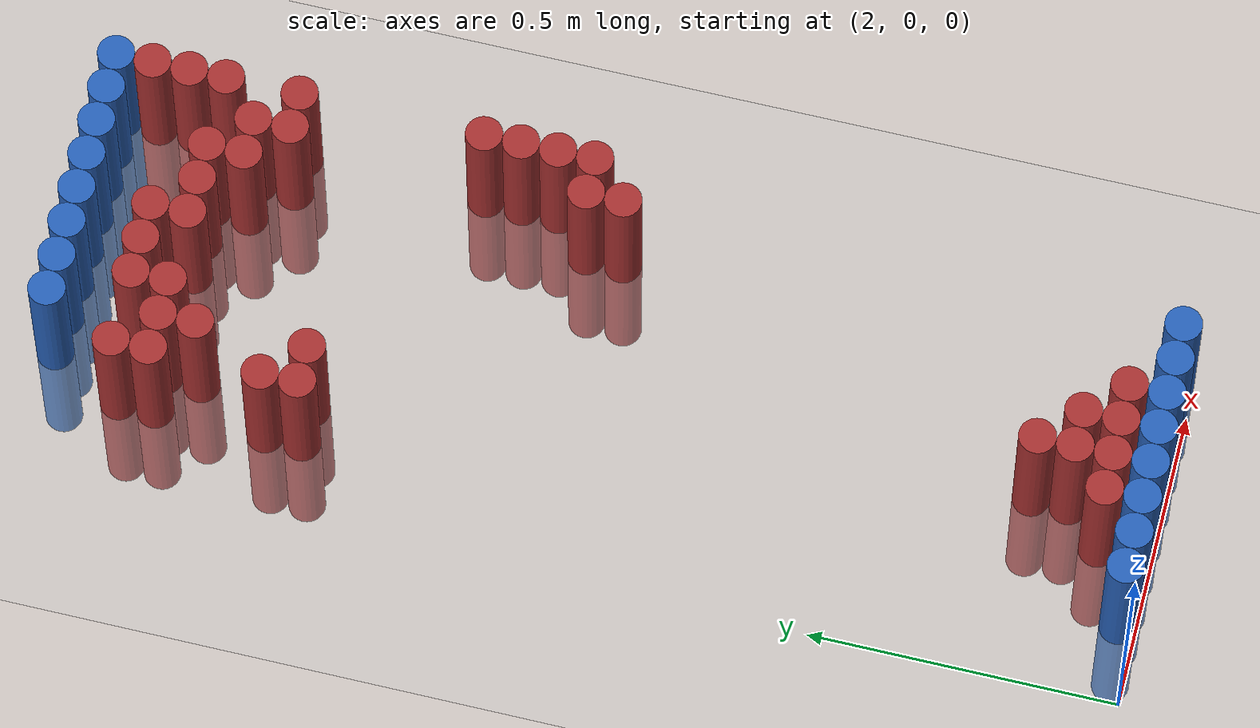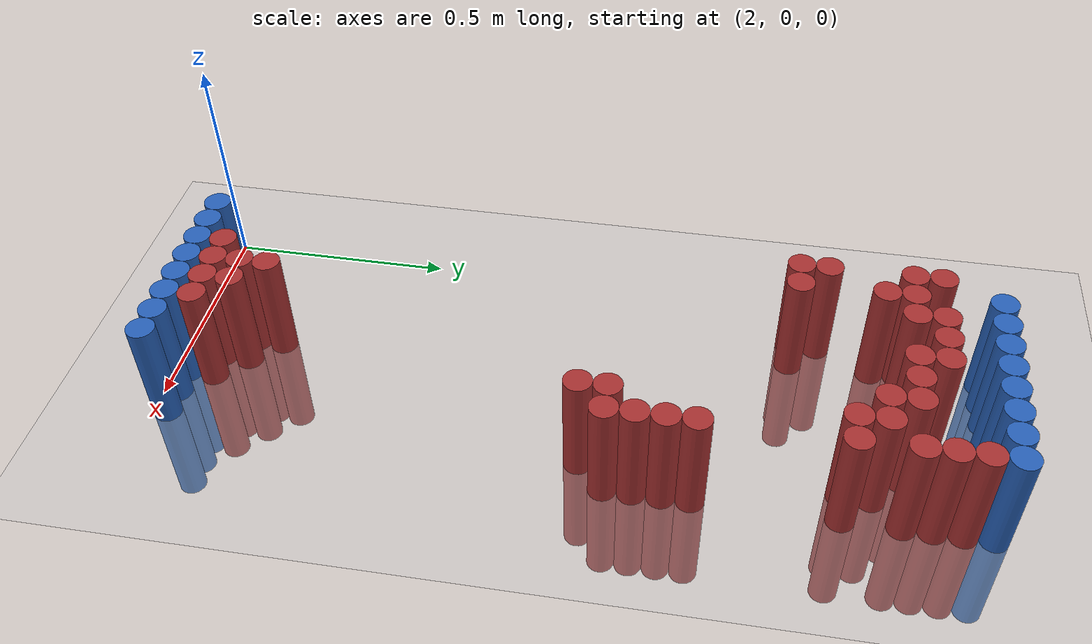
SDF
<sdf version="1.6">
 <world name="default">
  <model name="ground_plane">
   <static>1</static>
   <link name="link">
    <collision name="collision">
     <geometry><plane><normal>0 0 1</normal><size>100 100</size></plane></geometry>
     <surface><friction><ode><mu>100</mu><mu2>50</mu2></ode></friction></surface>
    </collision>
    <visual name="visual">
     <cast_shadows>0</cast_shadows>
     <geometry><plane><normal>0 0 1</normal><size>100 100</size></plane></geometry>
     <material>
      <script><uri>file://media/materials/scripts/gazebo.material</uri><name>Gazebo/Grey</name></script>
     </material>
    </visual>
   </link>
  </model>
  <model name="unit_cylinder_97">
   <static>1</static>
   <pose>2.190000 1.770000 0.000000 0.000000 0.000000 0.000000</pose>
   <link name="link">
    <inertial>
     <mass>1</mass>
     <inertia><ixx>0.145833</ixx><ixy>0</ixy><ixz>0</ixz><iyy>0.145833</iyy><iyz>0</iyz><izz>0.125</izz></inertia>
    </inertial>
    <collision name="collision">
     <geometry><cylinder><radius>0.030000</radius><length>0.5</length></cylinder></geometry>
    </collision>
    <visual name="visual">
     <geometry><cylinder><radius>0.030000</radius><length>0.5</length></cylinder></geometry>
     <material>
      <ambient>0.152000 0.379000 0.720000 1</ambient>
      <diffuse>0.152000 0.379000 0.720000 1</diffuse>
     </material>
     <material>
      <script><name>Gazebo/Grey</name><uri>file://media/materials/scripts/gazebo.material</uri></script>
     </material>
    </visual>
   </link>
  </model>
  <model name="unit_cylinder_98">
   <static>1</static>
   <pose>2.250000 1.770000 0.000000 0.000000 0.000000 0.000000</pose>
   <link name="link">
    <inertial>
     <mass>1</mass>
     <inertia><ixx>0.145833</ixx><ixy>0</ixy><ixz>0</ixz><iyy>0.145833</iyy><iyz>0</iyz><izz>0.125</izz></inertia>
    </inertial>
    <collision name="collision">
     <geometry><cylinder><radius>0.030000</radius><length>0.5</length></cylinder></geometry>
    </collision>
    <visual name="visual">
     <geometry><cylinder><radius>0.030000</radius><length>0.5</length></cylinder></geometry>
     <material>
      <ambient>0.152000 0.379000 0.720000 1</ambient>
      <diffuse>0.152000 0.379000 0.720000 1</diffuse>
     </material>
     <material>
      <script><name>Gazebo/Grey</name><uri>file://media/materials/scripts/gazebo.material</uri></script>
     </material>
    </visual>
   </link>
  </model>
  <model name="unit_cylinder_99">
   <static>1</static>
   <pose>2.310000 1.770000 0.000000 0.000000 0.000000 0.000000</pose>
   <link name="link">
    <inertial>
     <mass>1</mass>
     <inertia><ixx>0.145833</ixx><ixy>0</ixy><ixz>0</ixz><iyy>0.145833</iyy><iyz>0</iyz><izz>0.125</izz></inertia>
    </inertial>
    <collision name="collision">
     <geometry><cylinder><radius>0.030000</radius><length>0.5</length></cylinder></geometry>
    </collision>
    <visual name="visual">
     <geometry><cylinder><radius>0.030000</radius><length>0.5</length></cylinder></geometry>
     <material>
      <ambient>0.152000 0.379000 0.720000 1</ambient>
      <diffuse>0.152000 0.379000 0.720000 1</diffuse>
     </material>
     <material>
      <script><name>Gazebo/Grey</name><uri>file://media/materials/scripts/gazebo.material</uri></script>
     </material>
    </visual>
   </link>
  </model>
  <model name="unit_cylinder_100">
   <static>1</static>
   <pose>2.370000 1.770000 0.000000 0.000000 0.000000 0.000000</pose>
   <link name="link">
    <inertial>
     <mass>1</mass>
     <inertia><ixx>0.145833</ixx><ixy>0</ixy><ixz>0</ixz><iyy>0.145833</iyy><iyz>0</iyz><izz>0.125</izz></inertia>
    </inertial>
    <collision name="collision">
     <geometry><cylinder><radius>0.030000</radius><length>0.5</length></cylinder></geometry>
    </collision>
    <visual name="visual">
     <geometry><cylinder><radius>0.030000</radius><length>0.5</length></cylinder></geometry>
     <material>
      <ambient>0.152000 0.379000 0.720000 1</ambient>
      <diffuse>0.152000 0.379000 0.720000 1</diffuse>
     </material>
     <material>
      <script><name>Gazebo/Grey</name><uri>file://media/materials/scripts/gazebo.material</uri></script>
     </material>
    </visual>
   </link>
  </model>
  <model name="unit_cylinder_101">
   <static>1</static>
   <pose>2.430000 1.770000 0.000000 0.000000 0.000000 0.000000</pose>
   <link name="link">
    <inertial>
     <mass>1</mass>
     <inertia><ixx>0.145833</ixx><ixy>0</ixy><ixz>0</ixz><iyy>0.145833</iyy><iyz>0</iyz><izz>0.125</izz></inertia>
    </inertial>
    <collision name="collision">
     <geometry><cylinder><radius>0.030000</radius><length>0.5</length></cylinder></geometry>
    </collision>
    <visual name="visual">
     <geometry><cylinder><radius>0.030000</radius><length>0.5</length></cylinder></geometry>
     <material>
      <ambient>0.152000 0.379000 0.720000 1</ambient>
      <diffuse>0.152000 0.379000 0.720000 1</diffuse>
     </material>
     <material>
      <script><name>Gazebo/Grey</name><uri>file://media/materials/scripts/gazebo.material</uri></script>
     </material>
    </visual>
   </link>
  </model>
  <model name="unit_cylinder_102">
   <static>1</static>
   <pose>2.490000 1.770000 0.000000 0.000000 0.000000 0.000000</pose>
   <link name="link">
    <inertial>
     <mass>1</mass>
     <inertia><ixx>0.145833</ixx><ixy>0</ixy><ixz>0</ixz><iyy>0.145833</iyy><iyz>0</iyz><izz>0.125</izz></inertia>
    </inertial>
    <collision name="collision">
     <geometry><cylinder><radius>0.030000</radius><length>0.5</length></cylinder></geometry>
    </collision>
    <visual name="visual">
     <geometry><cylinder><radius>0.030000</radius><length>0.5</length></cylinder></geometry>
     <material>
      <ambient>0.152000 0.379000 0.720000 1</ambient>
      <diffuse>0.152000 0.379000 0.720000 1</diffuse>
     </material>
     <material>
      <script><name>Gazebo/Grey</name><uri>file://media/materials/scripts/gazebo.material</uri></script>
     </material>
    </visual>
   </link>
  </model>
  <model name="unit_cylinder_103">
   <static>1</static>
   <pose>2.550000 1.770000 0.000000 0.000000 0.000000 0.000000</pose>
   <link name="link">
    <inertial>
     <mass>1</mass>
     <inertia><ixx>0.145833</ixx><ixy>0</ixy><ixz>0</ixz><iyy>0.145833</iyy><iyz>0</iyz><izz>0.125</izz></inertia>
    </inertial>
    <collision name="collision">
     <geometry><cylinder><radius>0.030000</radius><length>0.5</length></cylinder></geometry>
    </collision>
    <visual name="visual">
     <geometry><cylinder><radius>0.030000</radius><length>0.5</length></cylinder></geometry>
     <material>
      <ambient>0.152000 0.379000 0.720000 1</ambient>
      <diffuse>0.152000 0.379000 0.720000 1</diffuse>
     </material>
     <material>
      <script><name>Gazebo/Grey</name><uri>file://media/materials/scripts/gazebo.material</uri></script>
     </material>
    </visual>
   </link>
  </model>
  <model name="unit_cylinder_104">
   <static>1</static>
   <pose>2.610000 1.770000 0.000000 0.000000 0.000000 0.000000</pose>
   <link name="link">
    <inertial>
     <mass>1</mass>
     <inertia><ixx>0.145833</ixx><ixy>0</ixy><ixz>0</ixz><iyy>0.145833</iyy><iyz>0</iyz><izz>0.125</izz></inertia>
    </inertial>
    <collision name="collision">
     <geometry><cylinder><radius>0.030000</radius><length>0.5</length></cylinder></geometry>
    </collision>
    <visual name="visual">
     <geometry><cylinder><radius>0.030000</radius><length>0.5</length></cylinder></geometry>
     <material>
      <ambient>0.152000 0.379000 0.720000 1</ambient>
      <diffuse>0.152000 0.379000 0.720000 1</diffuse>
     </material>
     <material>
      <script><name>Gazebo/Grey</name><uri>file://media/materials/scripts/gazebo.material</uri></script>
     </material>
    </visual>
   </link>
  </model>
  <model name="unit_cylinder_126">
   <static>1</static>
   <pose>2.610000 1.710000 0.000000 0.000000 0.000000 0.000000</pose>
   <link name="link">
    <inertial>
     <mass>1</mass>
     <inertia><ixx>0.145833</ixx><ixy>0</ixy><ixz>0</ixz><iyy>0.145833</iyy><iyz>0</iyz><izz>0.125</izz></inertia>
    </inertial>
    <collision name="collision">
     <geometry><cylinder><radius>0.030000</radius><length>0.5</length></cylinder></geometry>
    </collision>
    <visual name="visual">
     <geometry><cylinder><radius>0.030000</radius><length>0.5</length></cylinder></geometry>
     <material>
      <ambient>0.648000 0.192000 0.192000 1</ambient>
      <diffuse>0.648000 0.192000 0.192000 1</diffuse>
     </material>
     <material>
      <script><name>Gazebo/Grey</name><uri>file://media/materials/scripts/gazebo.material</uri></script>
     </material>
    </visual>
   </link>
  </model>
  <model name="unit_cylinder_135">
   <static>1</static>
   <pose>2.130000 1.650000 0.000000 0.000000 0.000000 0.000000</pose>
   <link name="link">
    <inertial>
     <mass>1</mass>
     <inertia><ixx>0.145833</ixx><ixy>0</ixy><ixz>0</ixz><iyy>0.145833</iyy><iyz>0</iyz><izz>0.125</izz></inertia>
    </inertial>
    <collision name="collision">
     <geometry><cylinder><radius>0.030000</radius><length>0.5</length></cylinder></geometry>
    </collision>
    <visual name="visual">
     <geometry><cylinder><radius>0.030000</radius><length>0.5</length></cylinder></geometry>
     <material>
      <ambient>0.648000 0.192000 0.192000 1</ambient>
      <diffuse>0.648000 0.192000 0.192000 1</diffuse>
     </material>
     <material>
      <script><name>Gazebo/Grey</name><uri>file://media/materials/scripts/gazebo.material</uri></script>
     </material>
    </visual>
   </link>
  </model>
  <model name="unit_cylinder_136">
   <static>1</static>
   <pose>2.250000 1.650000 0.000000 0.000000 0.000000 0.000000</pose>
   <link name="link">
    <inertial>
     <mass>1</mass>
     <inertia><ixx>0.145833</ixx><ixy>0</ixy><ixz>0</ixz><iyy>0.145833</iyy><iyz>0</iyz><izz>0.125</izz></inertia>
    </inertial>
    <collision name="collision">
     <geometry><cylinder><radius>0.030000</radius><length>0.5</length></cylinder></geometry>
    </collision>
    <visual name="visual">
     <geometry><cylinder><radius>0.030000</radius><length>0.5</length></cylinder></geometry>
     <material>
      <ambient>0.648000 0.192000 0.192000 1</ambient>
      <diffuse>0.648000 0.192000 0.192000 1</diffuse>
     </material>
     <material>
      <script><name>Gazebo/Grey</name><uri>file://media/materials/scripts/gazebo.material</uri></script>
     </material>
    </visual>
   </link>
  </model>
  <model name="unit_cylinder_137">
   <static>1</static>
   <pose>2.310000 1.650000 0.000000 0.000000 0.000000 0.000000</pose>
   <link name="link">
    <inertial>
     <mass>1</mass>
     <inertia><ixx>0.145833</ixx><ixy>0</ixy><ixz>0</ixz><iyy>0.145833</iyy><iyz>0</iyz><izz>0.125</izz></inertia>
    </inertial>
    <collision name="collision">
     <geometry><cylinder><radius>0.030000</radius><length>0.5</length></cylinder></geometry>
    </collision>
    <visual name="visual">
     <geometry><cylinder><radius>0.030000</radius><length>0.5</length></cylinder></geometry>
     <material>
      <ambient>0.648000 0.192000 0.192000 1</ambient>
      <diffuse>0.648000 0.192000 0.192000 1</diffuse>
     </material>
     <material>
      <script><name>Gazebo/Grey</name><uri>file://media/materials/scripts/gazebo.material</uri></script>
     </material>
    </visual>
   </link>
  </model>
  <model name="unit_cylinder_138">
   <static>1</static>
   <pose>2.370000 1.650000 0.000000 0.000000 0.000000 0.000000</pose>
   <link name="link">
    <inertial>
     <mass>1</mass>
     <inertia><ixx>0.145833</ixx><ixy>0</ixy><ixz>0</ixz><iyy>0.145833</iyy><iyz>0</iyz><izz>0.125</izz></inertia>
    </inertial>
    <collision name="collision">
     <geometry><cylinder><radius>0.030000</radius><length>0.5</length></cylinder></geometry>
    </collision>
    <visual name="visual">
     <geometry><cylinder><radius>0.030000</radius><length>0.5</length></cylinder></geometry>
     <material>
      <ambient>0.648000 0.192000 0.192000 1</ambient>
      <diffuse>0.648000 0.192000 0.192000 1</diffuse>
     </material>
     <material>
      <script><name>Gazebo/Grey</name><uri>file://media/materials/scripts/gazebo.material</uri></script>
     </material>
    </visual>
   </link>
  </model>
  <model name="unit_cylinder_139">
   <static>1</static>
   <pose>2.610000 1.650000 0.000000 0.000000 0.000000 0.000000</pose>
   <link name="link">
    <inertial>
     <mass>1</mass>
     <inertia><ixx>0.145833</ixx><ixy>0</ixy><ixz>0</ixz><iyy>0.145833</iyy><iyz>0</iyz><izz>0.125</izz></inertia>
    </inertial>
    <collision name="collision">
     <geometry><cylinder><radius>0.030000</radius><length>0.5</length></cylinder></geometry>
    </collision>
    <visual name="visual">
     <geometry><cylinder><radius>0.030000</radius><length>0.5</length></cylinder></geometry>
     <material>
      <ambient>0.648000 0.192000 0.192000 1</ambient>
      <diffuse>0.648000 0.192000 0.192000 1</diffuse>
     </material>
     <material>
      <script><name>Gazebo/Grey</name><uri>file://media/materials/scripts/gazebo.material</uri></script>
     </material>
    </visual>
   </link>
  </model>
  <model name="unit_cylinder_150">
   <static>1</static>
   <pose>2.130000 1.590000 0.000000 0.000000 0.000000 0.000000</pose>
   <link name="link">
    <inertial>
     <mass>1</mass>
     <inertia><ixx>0.145833</ixx><ixy>0</ixy><ixz>0</ixz><iyy>0.145833</iyy><iyz>0</iyz><izz>0.125</izz></inertia>
    </inertial>
    <collision name="collision">
     <geometry><cylinder><radius>0.030000</radius><length>0.5</length></cylinder></geometry>
    </collision>
    <visual name="visual">
     <geometry><cylinder><radius>0.030000</radius><length>0.5</length></cylinder></geometry>
     <material>
      <ambient>0.648000 0.192000 0.192000 1</ambient>
      <diffuse>0.648000 0.192000 0.192000 1</diffuse>
     </material>
     <material>
      <script><name>Gazebo/Grey</name><uri>file://media/materials/scripts/gazebo.material</uri></script>
     </material>
    </visual>
   </link>
  </model>
  <model name="unit_cylinder_151">
   <static>1</static>
   <pose>2.190000 1.590000 0.000000 0.000000 0.000000 0.000000</pose>
   <link name="link">
    <inertial>
     <mass>1</mass>
     <inertia><ixx>0.145833</ixx><ixy>0</ixy><ixz>0</ixz><iyy>0.145833</iyy><iyz>0</iyz><izz>0.125</izz></inertia>
    </inertial>
    <collision name="collision">
     <geometry><cylinder><radius>0.030000</radius><length>0.5</length></cylinder></geometry>
    </collision>
    <visual name="visual">
     <geometry><cylinder><radius>0.030000</radius><length>0.5</length></cylinder></geometry>
     <material>
      <ambient>0.648000 0.192000 0.192000 1</ambient>
      <diffuse>0.648000 0.192000 0.192000 1</diffuse>
     </material>
     <material>
      <script><name>Gazebo/Grey</name><uri>file://media/materials/scripts/gazebo.material</uri></script>
     </material>
    </visual>
   </link>
  </model>
  <model name="unit_cylinder_152">
   <static>1</static>
   <pose>2.250000 1.590000 0.000000 0.000000 0.000000 0.000000</pose>
   <link name="link">
    <inertial>
     <mass>1</mass>
     <inertia><ixx>0.145833</ixx><ixy>0</ixy><ixz>0</ixz><iyy>0.145833</iyy><iyz>0</iyz><izz>0.125</izz></inertia>
    </inertial>
    <collision name="collision">
     <geometry><cylinder><radius>0.030000</radius><length>0.5</length></cylinder></geometry>
    </collision>
    <visual name="visual">
     <geometry><cylinder><radius>0.030000</radius><length>0.5</length></cylinder></geometry>
     <material>
      <ambient>0.648000 0.192000 0.192000 1</ambient>
      <diffuse>0.648000 0.192000 0.192000 1</diffuse>
     </material>
     <material>
      <script><name>Gazebo/Grey</name><uri>file://media/materials/scripts/gazebo.material</uri></script>
     </material>
    </visual>
   </link>
  </model>
  <model name="unit_cylinder_153">
   <static>1</static>
   <pose>2.370000 1.590000 0.000000 0.000000 0.000000 0.000000</pose>
   <link name="link">
    <inertial>
     <mass>1</mass>
     <inertia><ixx>0.145833</ixx><ixy>0</ixy><ixz>0</ixz><iyy>0.145833</iyy><iyz>0</iyz><izz>0.125</izz></inertia>
    </inertial>
    <collision name="collision">
     <geometry><cylinder><radius>0.030000</radius><length>0.5</length></cylinder></geometry>
    </collision>
    <visual name="visual">
     <geometry><cylinder><radius>0.030000</radius><length>0.5</length></cylinder></geometry>
     <material>
      <ambient>0.648000 0.192000 0.192000 1</ambient>
      <diffuse>0.648000 0.192000 0.192000 1</diffuse>
     </material>
     <material>
      <script><name>Gazebo/Grey</name><uri>file://media/materials/scripts/gazebo.material</uri></script>
     </material>
    </visual>
   </link>
  </model>
  <model name="unit_cylinder_154">
   <static>1</static>
   <pose>2.430000 1.590000 0.000000 0.000000 0.000000 0.000000</pose>
   <link name="link">
    <inertial>
     <mass>1</mass>
     <inertia><ixx>0.145833</ixx><ixy>0</ixy><ixz>0</ixz><iyy>0.145833</iyy><iyz>0</iyz><izz>0.125</izz></inertia>
    </inertial>
    <collision name="collision">
     <geometry><cylinder><radius>0.030000</radius><length>0.5</length></cylinder></geometry>
    </collision>
    <visual name="visual">
     <geometry><cylinder><radius>0.030000</radius><length>0.5</length></cylinder></geometry>
     <material>
      <ambient>0.648000 0.192000 0.192000 1</ambient>
      <diffuse>0.648000 0.192000 0.192000 1</diffuse>
     </material>
     <material>
      <script><name>Gazebo/Grey</name><uri>file://media/materials/scripts/gazebo.material</uri></script>
     </material>
    </visual>
   </link>
  </model>
  <model name="unit_cylinder_155">
   <static>1</static>
   <pose>2.490000 1.590000 0.000000 0.000000 0.000000 0.000000</pose>
   <link name="link">
    <inertial>
     <mass>1</mass>
     <inertia><ixx>0.145833</ixx><ixy>0</ixy><ixz>0</ixz><iyy>0.145833</iyy><iyz>0</iyz><izz>0.125</izz></inertia>
    </inertial>
    <collision name="collision">
     <geometry><cylinder><radius>0.030000</radius><length>0.5</length></cylinder></geometry>
    </collision>
    <visual name="visual">
     <geometry><cylinder><radius>0.030000</radius><length>0.5</length></cylinder></geometry>
     <material>
      <ambient>0.648000 0.192000 0.192000 1</ambient>
      <diffuse>0.648000 0.192000 0.192000 1</diffuse>
     </material>
     <material>
      <script><name>Gazebo/Grey</name><uri>file://media/materials/scripts/gazebo.material</uri></script>
     </material>
    </visual>
   </link>
  </model>
  <model name="unit_cylinder_156">
   <static>1</static>
   <pose>2.610000 1.590000 0.000000 0.000000 0.000000 0.000000</pose>
   <link name="link">
    <inertial>
     <mass>1</mass>
     <inertia><ixx>0.145833</ixx><ixy>0</ixy><ixz>0</ixz><iyy>0.145833</iyy><iyz>0</iyz><izz>0.125</izz></inertia>
    </inertial>
    <collision name="collision">
     <geometry><cylinder><radius>0.030000</radius><length>0.5</length></cylinder></geometry>
    </collision>
    <visual name="visual">
     <geometry><cylinder><radius>0.030000</radius><length>0.5</length></cylinder></geometry>
     <material>
      <ambient>0.648000 0.192000 0.192000 1</ambient>
      <diffuse>0.648000 0.192000 0.192000 1</diffuse>
     </material>
     <material>
      <script><name>Gazebo/Grey</name><uri>file://media/materials/scripts/gazebo.material</uri></script>
     </material>
    </visual>
   </link>
  </model>
  <model name="unit_cylinder_166">
   <static>1</static>
   <pose>2.190000 1.530000 0.000000 0.000000 0.000000 0.000000</pose>
   <link name="link">
    <inertial>
     <mass>1</mass>
     <inertia><ixx>0.145833</ixx><ixy>0</ixy><ixz>0</ixz><iyy>0.145833</iyy><iyz>0</iyz><izz>0.125</izz></inertia>
    </inertial>
    <collision name="collision">
     <geometry><cylinder><radius>0.030000</radius><length>0.5</length></cylinder></geometry>
    </collision>
    <visual name="visual">
     <geometry><cylinder><radius>0.030000</radius><length>0.5</length></cylinder></geometry>
     <material>
      <ambient>0.648000 0.192000 0.192000 1</ambient>
      <diffuse>0.648000 0.192000 0.192000 1</diffuse>
     </material>
     <material>
      <script><name>Gazebo/Grey</name><uri>file://media/materials/scripts/gazebo.material</uri></script>
     </material>
    </visual>
   </link>
  </model>
  <model name="unit_cylinder_167">
   <static>1</static>
   <pose>2.490000 1.530000 0.000000 0.000000 0.000000 0.000000</pose>
   <link name="link">
    <inertial>
     <mass>1</mass>
     <inertia><ixx>0.145833</ixx><ixy>0</ixy><ixz>0</ixz><iyy>0.145833</iyy><iyz>0</iyz><izz>0.125</izz></inertia>
    </inertial>
    <collision name="collision">
     <geometry><cylinder><radius>0.030000</radius><length>0.5</length></cylinder></geometry>
    </collision>
    <visual name="visual">
     <geometry><cylinder><radius>0.030000</radius><length>0.5</length></cylinder></geometry>
     <material>
      <ambient>0.648000 0.192000 0.192000 1</ambient>
      <diffuse>0.648000 0.192000 0.192000 1</diffuse>
     </material>
     <material>
      <script><name>Gazebo/Grey</name><uri>file://media/materials/scripts/gazebo.material</uri></script>
     </material>
    </visual>
   </link>
  </model>
  <model name="unit_cylinder_168">
   <static>1</static>
   <pose>2.550000 1.530000 0.000000 0.000000 0.000000 0.000000</pose>
   <link name="link">
    <inertial>
     <mass>1</mass>
     <inertia><ixx>0.145833</ixx><ixy>0</ixy><ixz>0</ixz><iyy>0.145833</iyy><iyz>0</iyz><izz>0.125</izz></inertia>
    </inertial>
    <collision name="collision">
     <geometry><cylinder><radius>0.030000</radius><length>0.5</length></cylinder></geometry>
    </collision>
    <visual name="visual">
     <geometry><cylinder><radius>0.030000</radius><length>0.5</length></cylinder></geometry>
     <material>
      <ambient>0.648000 0.192000 0.192000 1</ambient>
      <diffuse>0.648000 0.192000 0.192000 1</diffuse>
     </material>
     <material>
      <script><name>Gazebo/Grey</name><uri>file://media/materials/scripts/gazebo.material</uri></script>
     </material>
    </visual>
   </link>
  </model>
  <model name="unit_cylinder_177">
   <static>1</static>
   <pose>2.550000 1.470000 0.000000 0.000000 0.000000 0.000000</pose>
   <link name="link">
    <inertial>
     <mass>1</mass>
     <inertia><ixx>0.145833</ixx><ixy>0</ixy><ixz>0</ixz><iyy>0.145833</iyy><iyz>0</iyz><izz>0.125</izz></inertia>
    </inertial>
    <collision name="collision">
     <geometry><cylinder><radius>0.030000</radius><length>0.5</length></cylinder></geometry>
    </collision>
    <visual name="visual">
     <geometry><cylinder><radius>0.030000</radius><length>0.5</length></cylinder></geometry>
     <material>
      <ambient>0.648000 0.192000 0.192000 1</ambient>
      <diffuse>0.648000 0.192000 0.192000 1</diffuse>
     </material>
     <material>
      <script><name>Gazebo/Grey</name><uri>file://media/materials/scripts/gazebo.material</uri></script>
     </material>
    </visual>
   </link>
  </model>
  <model name="unit_cylinder_178">
   <static>1</static>
   <pose>2.610000 1.470000 0.000000 0.000000 0.000000 0.000000</pose>
   <link name="link">
    <inertial>
     <mass>1</mass>
     <inertia><ixx>0.145833</ixx><ixy>0</ixy><ixz>0</ixz><iyy>0.145833</iyy><iyz>0</iyz><izz>0.125</izz></inertia>
    </inertial>
    <collision name="collision">
     <geometry><cylinder><radius>0.030000</radius><length>0.5</length></cylinder></geometry>
    </collision>
    <visual name="visual">
     <geometry><cylinder><radius>0.030000</radius><length>0.5</length></cylinder></geometry>
     <material>
      <ambient>0.648000 0.192000 0.192000 1</ambient>
      <diffuse>0.648000 0.192000 0.192000 1</diffuse>
     </material>
     <material>
      <script><name>Gazebo/Grey</name><uri>file://media/materials/scripts/gazebo.material</uri></script>
     </material>
    </visual>
   </link>
  </model>
  <model name="unit_cylinder_188">
   <static>1</static>
   <pose>2.130000 1.410000 0.000000 0.000000 0.000000 0.000000</pose>
   <link name="link">
    <inertial>
     <mass>1</mass>
     <inertia><ixx>0.145833</ixx><ixy>0</ixy><ixz>0</ixz><iyy>0.145833</iyy><iyz>0</iyz><izz>0.125</izz></inertia>
    </inertial>
    <collision name="collision">
     <geometry><cylinder><radius>0.030000</radius><length>0.5</length></cylinder></geometry>
    </collision>
    <visual name="visual">
     <geometry><cylinder><radius>0.030000</radius><length>0.5</length></cylinder></geometry>
     <material>
      <ambient>0.648000 0.192000 0.192000 1</ambient>
      <diffuse>0.648000 0.192000 0.192000 1</diffuse>
     </material>
     <material>
      <script><name>Gazebo/Grey</name><uri>file://media/materials/scripts/gazebo.material</uri></script>
     </material>
    </visual>
   </link>
  </model>
  <model name="unit_cylinder_197">
   <static>1</static>
   <pose>2.130000 1.350000 0.000000 0.000000 0.000000 0.000000</pose>
   <link name="link">
    <inertial>
     <mass>1</mass>
     <inertia><ixx>0.145833</ixx><ixy>0</ixy><ixz>0</ixz><iyy>0.145833</iyy><iyz>0</iyz><izz>0.125</izz></inertia>
    </inertial>
    <collision name="collision">
     <geometry><cylinder><radius>0.030000</radius><length>0.5</length></cylinder></geometry>
    </collision>
    <visual name="visual">
     <geometry><cylinder><radius>0.030000</radius><length>0.5</length></cylinder></geometry>
     <material>
      <ambient>0.648000 0.192000 0.192000 1</ambient>
      <diffuse>0.648000 0.192000 0.192000 1</diffuse>
     </material>
     <material>
      <script><name>Gazebo/Grey</name><uri>file://media/materials/scripts/gazebo.material</uri></script>
     </material>
    </visual>
   </link>
  </model>
  <model name="unit_cylinder_198">
   <static>1</static>
   <pose>2.190000 1.350000 0.000000 0.000000 0.000000 0.000000</pose>
   <link name="link">
    <inertial>
     <mass>1</mass>
     <inertia><ixx>0.145833</ixx><ixy>0</ixy><ixz>0</ixz><iyy>0.145833</iyy><iyz>0</iyz><izz>0.125</izz></inertia>
    </inertial>
    <collision name="collision">
     <geometry><cylinder><radius>0.030000</radius><length>0.5</length></cylinder></geometry>
    </collision>
    <visual name="visual">
     <geometry><cylinder><radius>0.030000</radius><length>0.5</length></cylinder></geometry>
     <material>
      <ambient>0.648000 0.192000 0.192000 1</ambient>
      <diffuse>0.648000 0.192000 0.192000 1</diffuse>
     </material>
     <material>
      <script><name>Gazebo/Grey</name><uri>file://media/materials/scripts/gazebo.material</uri></script>
     </material>
    </visual>
   </link>
  </model>
  <model name="unit_cylinder_207">
   <static>1</static>
   <pose>2.610000 1.170000 0.000000 0.000000 0.000000 0.000000</pose>
   <link name="link">
    <inertial>
     <mass>1</mass>
     <inertia><ixx>0.145833</ixx><ixy>0</ixy><ixz>0</ixz><iyy>0.145833</iyy><iyz>0</iyz><izz>0.125</izz></inertia>
    </inertial>
    <collision name="collision">
     <geometry><cylinder><radius>0.030000</radius><length>0.5</length></cylinder></geometry>
    </collision>
    <visual name="visual">
     <geometry><cylinder><radius>0.030000</radius><length>0.5</length></cylinder></geometry>
     <material>
      <ambient>0.648000 0.192000 0.192000 1</ambient>
      <diffuse>0.648000 0.192000 0.192000 1</diffuse>
     </material>
     <material>
      <script><name>Gazebo/Grey</name><uri>file://media/materials/scripts/gazebo.material</uri></script>
     </material>
    </visual>
   </link>
  </model>
  <model name="unit_cylinder_212">
   <static>1</static>
   <pose>2.610000 1.110000 0.000000 0.000000 0.000000 0.000000</pose>
   <link name="link">
    <inertial>
     <mass>1</mass>
     <inertia><ixx>0.145833</ixx><ixy>0</ixy><ixz>0</ixz><iyy>0.145833</iyy><iyz>0</iyz><izz>0.125</izz></inertia>
    </inertial>
    <collision name="collision">
     <geometry><cylinder><radius>0.030000</radius><length>0.5</length></cylinder></geometry>
    </collision>
    <visual name="visual">
     <geometry><cylinder><radius>0.030000</radius><length>0.5</length></cylinder></geometry>
     <material>
      <ambient>0.648000 0.192000 0.192000 1</ambient>
      <diffuse>0.648000 0.192000 0.192000 1</diffuse>
     </material>
     <material>
      <script><name>Gazebo/Grey</name><uri>file://media/materials/scripts/gazebo.material</uri></script>
     </material>
    </visual>
   </link>
  </model>
  <model name="unit_cylinder_216">
   <static>1</static>
   <pose>2.610000 1.050000 0.000000 0.000000 0.000000 0.000000</pose>
   <link name="link">
    <inertial>
     <mass>1</mass>
     <inertia><ixx>0.145833</ixx><ixy>0</ixy><ixz>0</ixz><iyy>0.145833</iyy><iyz>0</iyz><izz>0.125</izz></inertia>
    </inertial>
    <collision name="collision">
     <geometry><cylinder><radius>0.030000</radius><length>0.5</length></cylinder></geometry>
    </collision>
    <visual name="visual">
     <geometry><cylinder><radius>0.030000</radius><length>0.5</length></cylinder></geometry>
     <material>
      <ambient>0.648000 0.192000 0.192000 1</ambient>
      <diffuse>0.648000 0.192000 0.192000 1</diffuse>
     </material>
     <material>
      <script><name>Gazebo/Grey</name><uri>file://media/materials/scripts/gazebo.material</uri></script>
     </material>
    </visual>
   </link>
  </model>
  <model name="unit_cylinder_222">
   <static>1</static>
   <pose>2.550000 0.990000 0.000000 0.000000 0.000000 0.000000</pose>
   <link name="link">
    <inertial>
     <mass>1</mass>
     <inertia><ixx>0.145833</ixx><ixy>0</ixy><ixz>0</ixz><iyy>0.145833</iyy><iyz>0</iyz><izz>0.125</izz></inertia>
    </inertial>
    <collision name="collision">
     <geometry><cylinder><radius>0.030000</radius><length>0.5</length></cylinder></geometry>
    </collision>
    <visual name="visual">
     <geometry><cylinder><radius>0.030000</radius><length>0.5</length></cylinder></geometry>
     <material>
      <ambient>0.648000 0.192000 0.192000 1</ambient>
      <diffuse>0.648000 0.192000 0.192000 1</diffuse>
     </material>
     <material>
      <script><name>Gazebo/Grey</name><uri>file://media/materials/scripts/gazebo.material</uri></script>
     </material>
    </visual>
   </link>
  </model>
  <model name="unit_cylinder_223">
   <static>1</static>
   <pose>2.610000 0.990000 0.000000 0.000000 0.000000 0.000000</pose>
   <link name="link">
    <inertial>
     <mass>1</mass>
     <inertia><ixx>0.145833</ixx><ixy>0</ixy><ixz>0</ixz><iyy>0.145833</iyy><iyz>0</iyz><izz>0.125</izz></inertia>
    </inertial>
    <collision name="collision">
     <geometry><cylinder><radius>0.030000</radius><length>0.5</length></cylinder></geometry>
    </collision>
    <visual name="visual">
     <geometry><cylinder><radius>0.030000</radius><length>0.5</length></cylinder></geometry>
     <material>
      <ambient>0.648000 0.192000 0.192000 1</ambient>
      <diffuse>0.648000 0.192000 0.192000 1</diffuse>
     </material>
     <material>
      <script><name>Gazebo/Grey</name><uri>file://media/materials/scripts/gazebo.material</uri></script>
     </material>
    </visual>
   </link>
  </model>
  <model name="unit_cylinder_229">
   <static>1</static>
   <pose>2.550000 0.930000 0.000000 0.000000 0.000000 0.000000</pose>
   <link name="link">
    <inertial>
     <mass>1</mass>
     <inertia><ixx>0.145833</ixx><ixy>0</ixy><ixz>0</ixz><iyy>0.145833</iyy><iyz>0</iyz><izz>0.125</izz></inertia>
    </inertial>
    <collision name="collision">
     <geometry><cylinder><radius>0.030000</radius><length>0.5</length></cylinder></geometry>
    </collision>
    <visual name="visual">
     <geometry><cylinder><radius>0.030000</radius><length>0.5</length></cylinder></geometry>
     <material>
      <ambient>0.648000 0.192000 0.192000 1</ambient>
      <diffuse>0.648000 0.192000 0.192000 1</diffuse>
     </material>
     <material>
      <script><name>Gazebo/Grey</name><uri>file://media/materials/scripts/gazebo.material</uri></script>
     </material>
    </visual>
   </link>
  </model>
  <model name="unit_cylinder_249">
   <static>1</static>
   <pose>2.310000 0.210000 0.000000 0.000000 0.000000 0.000000</pose>
   <link name="link">
    <inertial>
     <mass>1</mass>
     <inertia><ixx>0.145833</ixx><ixy>0</ixy><ixz>0</ixz><iyy>0.145833</iyy><iyz>0</iyz><izz>0.125</izz></inertia>
    </inertial>
    <collision name="collision">
     <geometry><cylinder><radius>0.030000</radius><length>0.5</length></cylinder></geometry>
    </collision>
    <visual name="visual">
     <geometry><cylinder><radius>0.030000</radius><length>0.5</length></cylinder></geometry>
     <material>
      <ambient>0.648000 0.192000 0.192000 1</ambient>
      <diffuse>0.648000 0.192000 0.192000 1</diffuse>
     </material>
     <material>
      <script><name>Gazebo/Grey</name><uri>file://media/materials/scripts/gazebo.material</uri></script>
     </material>
    </visual>
   </link>
  </model>
  <model name="unit_cylinder_254">
   <static>1</static>
   <pose>2.310000 0.150000 0.000000 0.000000 0.000000 0.000000</pose>
   <link name="link">
    <inertial>
     <mass>1</mass>
     <inertia><ixx>0.145833</ixx><ixy>0</ixy><ixz>0</ixz><iyy>0.145833</iyy><iyz>0</iyz><izz>0.125</izz></inertia>
    </inertial>
    <collision name="collision">
     <geometry><cylinder><radius>0.030000</radius><length>0.5</length></cylinder></geometry>
    </collision>
    <visual name="visual">
     <geometry><cylinder><radius>0.030000</radius><length>0.5</length></cylinder></geometry>
     <material>
      <ambient>0.648000 0.192000 0.192000 1</ambient>
      <diffuse>0.648000 0.192000 0.192000 1</diffuse>
     </material>
     <material>
      <script><name>Gazebo/Grey</name><uri>file://media/materials/scripts/gazebo.material</uri></script>
     </material>
    </visual>
   </link>
  </model>
  <model name="unit_cylinder_255">
   <static>1</static>
   <pose>2.370000 0.150000 0.000000 0.000000 0.000000 0.000000</pose>
   <link name="link">
    <inertial>
     <mass>1</mass>
     <inertia><ixx>0.145833</ixx><ixy>0</ixy><ixz>0</ixz><iyy>0.145833</iyy><iyz>0</iyz><izz>0.125</izz></inertia>
    </inertial>
    <collision name="collision">
     <geometry><cylinder><radius>0.030000</radius><length>0.5</length></cylinder></geometry>
    </collision>
    <visual name="visual">
     <geometry><cylinder><radius>0.030000</radius><length>0.5</length></cylinder></geometry>
     <material>
      <ambient>0.648000 0.192000 0.192000 1</ambient>
      <diffuse>0.648000 0.192000 0.192000 1</diffuse>
     </material>
     <material>
      <script><name>Gazebo/Grey</name><uri>file://media/materials/scripts/gazebo.material</uri></script>
     </material>
    </visual>
   </link>
  </model>
  <model name="unit_cylinder_262">
   <static>1</static>
   <pose>2.250000 0.090000 0.000000 0.000000 0.000000 0.000000</pose>
   <link name="link">
    <inertial>
     <mass>1</mass>
     <inertia><ixx>0.145833</ixx><ixy>0</ixy><ixz>0</ixz><iyy>0.145833</iyy><iyz>0</iyz><izz>0.125</izz></inertia>
    </inertial>
    <collision name="collision">
     <geometry><cylinder><radius>0.030000</radius><length>0.5</length></cylinder></geometry>
    </collision>
    <visual name="visual">
     <geometry><cylinder><radius>0.030000</radius><length>0.5</length></cylinder></geometry>
     <material>
      <ambient>0.648000 0.192000 0.192000 1</ambient>
      <diffuse>0.648000 0.192000 0.192000 1</diffuse>
     </material>
     <material>
      <script><name>Gazebo/Grey</name><uri>file://media/materials/scripts/gazebo.material</uri></script>
     </material>
    </visual>
   </link>
  </model>
  <model name="unit_cylinder_263">
   <static>1</static>
   <pose>2.310000 0.090000 0.000000 0.000000 0.000000 0.000000</pose>
   <link name="link">
    <inertial>
     <mass>1</mass>
     <inertia><ixx>0.145833</ixx><ixy>0</ixy><ixz>0</ixz><iyy>0.145833</iyy><iyz>0</iyz><izz>0.125</izz></inertia>
    </inertial>
    <collision name="collision">
     <geometry><cylinder><radius>0.030000</radius><length>0.5</length></cylinder></geometry>
    </collision>
    <visual name="visual">
     <geometry><cylinder><radius>0.030000</radius><length>0.5</length></cylinder></geometry>
     <material>
      <ambient>0.648000 0.192000 0.192000 1</ambient>
      <diffuse>0.648000 0.192000 0.192000 1</diffuse>
     </material>
     <material>
      <script><name>Gazebo/Grey</name><uri>file://media/materials/scripts/gazebo.material</uri></script>
     </material>
    </visual>
   </link>
  </model>
  <model name="unit_cylinder_264">
   <static>1</static>
   <pose>2.370000 0.090000 0.000000 0.000000 0.000000 0.000000</pose>
   <link name="link">
    <inertial>
     <mass>1</mass>
     <inertia><ixx>0.145833</ixx><ixy>0</ixy><ixz>0</ixz><iyy>0.145833</iyy><iyz>0</iyz><izz>0.125</izz></inertia>
    </inertial>
    <collision name="collision">
     <geometry><cylinder><radius>0.030000</radius><length>0.5</length></cylinder></geometry>
    </collision>
    <visual name="visual">
     <geometry><cylinder><radius>0.030000</radius><length>0.5</length></cylinder></geometry>
     <material>
      <ambient>0.648000 0.192000 0.192000 1</ambient>
      <diffuse>0.648000 0.192000 0.192000 1</diffuse>
     </material>
     <material>
      <script><name>Gazebo/Grey</name><uri>file://media/materials/scripts/gazebo.material</uri></script>
     </material>
    </visual>
   </link>
  </model>
  <model name="unit_cylinder_265">
   <static>1</static>
   <pose>2.430000 0.090000 0.000000 0.000000 0.000000 0.000000</pose>
   <link name="link">
    <inertial>
     <mass>1</mass>
     <inertia><ixx>0.145833</ixx><ixy>0</ixy><ixz>0</ixz><iyy>0.145833</iyy><iyz>0</iyz><izz>0.125</izz></inertia>
    </inertial>
    <collision name="collision">
     <geometry><cylinder><radius>0.030000</radius><length>0.5</length></cylinder></geometry>
    </collision>
    <visual name="visual">
     <geometry><cylinder><radius>0.030000</radius><length>0.5</length></cylinder></geometry>
     <material>
      <ambient>0.648000 0.192000 0.192000 1</ambient>
      <diffuse>0.648000 0.192000 0.192000 1</diffuse>
     </material>
     <material>
      <script><name>Gazebo/Grey</name><uri>file://media/materials/scripts/gazebo.material</uri></script>
     </material>
    </visual>
   </link>
  </model>
  <model name="unit_cylinder_271">
   <static>1</static>
   <pose>2.130000 0.030000 0.000000 0.000000 0.000000 0.000000</pose>
   <link name="link">
    <inertial>
     <mass>1</mass>
     <inertia><ixx>0.145833</ixx><ixy>0</ixy><ixz>0</ixz><iyy>0.145833</iyy><iyz>0</iyz><izz>0.125</izz></inertia>
    </inertial>
    <collision name="collision">
     <geometry><cylinder><radius>0.030000</radius><length>0.5</length></cylinder></geometry>
    </collision>
    <visual name="visual">
     <geometry><cylinder><radius>0.030000</radius><length>0.5</length></cylinder></geometry>
     <material>
      <ambient>0.152000 0.379000 0.720000 1</ambient>
      <diffuse>0.152000 0.379000 0.720000 1</diffuse>
     </material>
     <material>
      <script><name>Gazebo/Grey</name><uri>file://media/materials/scripts/gazebo.material</uri></script>
     </material>
    </visual>
   </link>
  </model>
  <model name="unit_cylinder_272">
   <static>1</static>
   <pose>2.190000 0.030000 0.000000 0.000000 0.000000 0.000000</pose>
   <link name="link">
    <inertial>
     <mass>1</mass>
     <inertia><ixx>0.145833</ixx><ixy>0</ixy><ixz>0</ixz><iyy>0.145833</iyy><iyz>0</iyz><izz>0.125</izz></inertia>
    </inertial>
    <collision name="collision">
     <geometry><cylinder><radius>0.030000</radius><length>0.5</length></cylinder></geometry>
    </collision>
    <visual name="visual">
     <geometry><cylinder><radius>0.030000</radius><length>0.5</length></cylinder></geometry>
     <material>
      <ambient>0.152000 0.379000 0.720000 1</ambient>
      <diffuse>0.152000 0.379000 0.720000 1</diffuse>
     </material>
     <material>
      <script><name>Gazebo/Grey</name><uri>file://media/materials/scripts/gazebo.material</uri></script>
     </material>
    </visual>
   </link>
  </model>
  <model name="unit_cylinder_273">
   <static>1</static>
   <pose>2.250000 0.030000 0.000000 0.000000 0.000000 0.000000</pose>
   <link name="link">
    <inertial>
     <mass>1</mass>
     <inertia><ixx>0.145833</ixx><ixy>0</ixy><ixz>0</ixz><iyy>0.145833</iyy><iyz>0</iyz><izz>0.125</izz></inertia>
    </inertial>
    <collision name="collision">
     <geometry><cylinder><radius>0.030000</radius><length>0.5</length></cylinder></geometry>
    </collision>
    <visual name="visual">
     <geometry><cylinder><radius>0.030000</radius><length>0.5</length></cylinder></geometry>
     <material>
      <ambient>0.152000 0.379000 0.720000 1</ambient>
      <diffuse>0.152000 0.379000 0.720000 1</diffuse>
     </material>
     <material>
      <script><name>Gazebo/Grey</name><uri>file://media/materials/scripts/gazebo.material</uri></script>
     </material>
    </visual>
   </link>
  </model>
  <model name="unit_cylinder_274">
   <static>1</static>
   <pose>2.310000 0.030000 0.000000 0.000000 0.000000 0.000000</pose>
   <link name="link">
    <inertial>
     <mass>1</mass>
     <inertia><ixx>0.145833</ixx><ixy>0</ixy><ixz>0</ixz><iyy>0.145833</iyy><iyz>0</iyz><izz>0.125</izz></inertia>
    </inertial>
    <collision name="collision">
     <geometry><cylinder><radius>0.030000</radius><length>0.5</length></cylinder></geometry>
    </collision>
    <visual name="visual">
     <geometry><cylinder><radius>0.030000</radius><length>0.5</length></cylinder></geometry>
     <material>
      <ambient>0.152000 0.379000 0.720000 1</ambient>
      <diffuse>0.152000 0.379000 0.720000 1</diffuse>
     </material>
     <material>
      <script><name>Gazebo/Grey</name><uri>file://media/materials/scripts/gazebo.material</uri></script>
     </material>
    </visual>
   </link>
  </model>
  <model name="unit_cylinder_275">
   <static>1</static>
   <pose>2.370000 0.030000 0.000000 0.000000 0.000000 0.000000</pose>
   <link name="link">
    <inertial>
     <mass>1</mass>
     <inertia><ixx>0.145833</ixx><ixy>0</ixy><ixz>0</ixz><iyy>0.145833</iyy><iyz>0</iyz><izz>0.125</izz></inertia>
    </inertial>
    <collision name="collision">
     <geometry><cylinder><radius>0.030000</radius><length>0.5</length></cylinder></geometry>
    </collision>
    <visual name="visual">
     <geometry><cylinder><radius>0.030000</radius><length>0.5</length></cylinder></geometry>
     <material>
      <ambient>0.152000 0.379000 0.720000 1</ambient>
      <diffuse>0.152000 0.379000 0.720000 1</diffuse>
     </material>
     <material>
      <script><name>Gazebo/Grey</name><uri>file://media/materials/scripts/gazebo.material</uri></script>
     </material>
    </visual>
   </link>
  </model>
  <model name="unit_cylinder_276">
   <static>1</static>
   <pose>2.430000 0.030000 0.000000 0.000000 0.000000 0.000000</pose>
   <link name="link">
    <inertial>
     <mass>1</mass>
     <inertia><ixx>0.145833</ixx><ixy>0</ixy><ixz>0</ixz><iyy>0.145833</iyy><iyz>0</iyz><izz>0.125</izz></inertia>
    </inertial>
    <collision name="collision">
     <geometry><cylinder><radius>0.030000</radius><length>0.5</length></cylinder></geometry>
    </collision>
    <visual name="visual">
     <geometry><cylinder><radius>0.030000</radius><length>0.5</length></cylinder></geometry>
     <material>
      <ambient>0.152000 0.379000 0.720000 1</ambient>
      <diffuse>0.152000 0.379000 0.720000 1</diffuse>
     </material>
     <material>
      <script><name>Gazebo/Grey</name><uri>file://media/materials/scripts/gazebo.material</uri></script>
     </material>
    </visual>
   </link>
  </model>
  <model name="unit_cylinder_277">
   <static>1</static>
   <pose>2.490000 0.030000 0.000000 0.000000 0.000000 0.000000</pose>
   <link name="link">
    <inertial>
     <mass>1</mass>
     <inertia><ixx>0.145833</ixx><ixy>0</ixy><ixz>0</ixz><iyy>0.145833</iyy><iyz>0</iyz><izz>0.125</izz></inertia>
    </inertial>
    <collision name="collision">
     <geometry><cylinder><radius>0.030000</radius><length>0.5</length></cylinder></geometry>
    </collision>
    <visual name="visual">
     <geometry><cylinder><radius>0.030000</radius><length>0.5</length></cylinder></geometry>
     <material>
      <ambient>0.152000 0.379000 0.720000 1</ambient>
      <diffuse>0.152000 0.379000 0.720000 1</diffuse>
     </material>
     <material>
      <script><name>Gazebo/Grey</name><uri>file://media/materials/scripts/gazebo.material</uri></script>
     </material>
    </visual>
   </link>
  </model>
  <model name="unit_cylinder_278">
   <static>1</static>
   <pose>2.550000 0.030000 0.000000 0.000000 0.000000 0.000000</pose>
   <link name="link">
    <inertial>
     <mass>1</mass>
     <inertia><ixx>0.145833</ixx><ixy>0</ixy><ixz>0</ixz><iyy>0.145833</iyy><iyz>0</iyz><izz>0.125</izz></inertia>
    </inertial>
    <collision name="collision">
     <geometry><cylinder><radius>0.030000</radius><length>0.5</length></cylinder></geometry>
    </collision>
    <visual name="visual">
     <geometry><cylinder><radius>0.030000</radius><length>0.5</length></cylinder></geometry>
     <material>
      <ambient>0.152000 0.379000 0.720000 1</ambient>
      <diffuse>0.152000 0.379000 0.720000 1</diffuse>
     </material>
     <material>
      <script><name>Gazebo/Grey</name><uri>file://media/materials/scripts/gazebo.material</uri></script>
     </material>
    </visual>
   </link>
  </model>
 </world>
</sdf>
